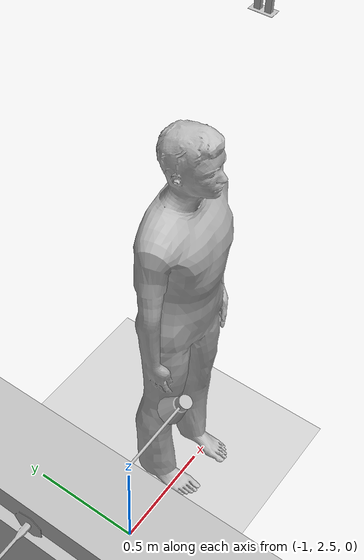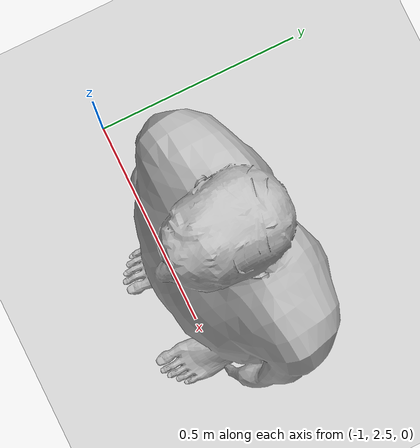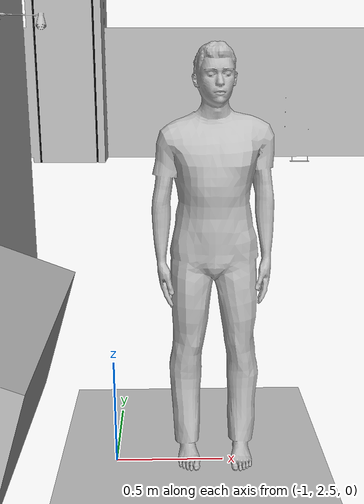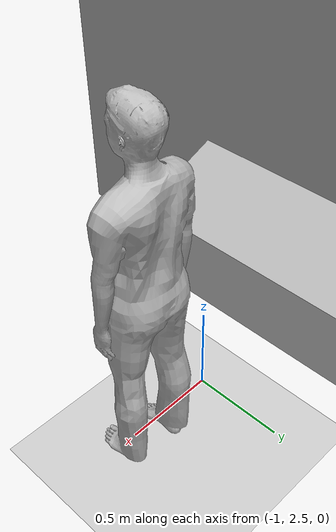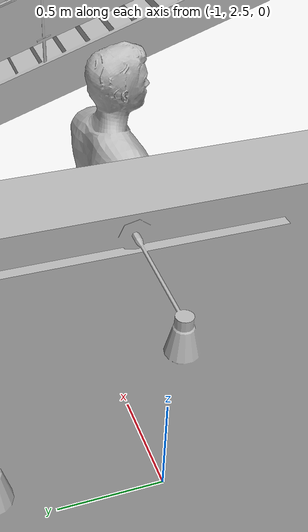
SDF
<sdf version='1.9'>
  <world name='default'>
    <light name='sun' type='directional'>
      <cast_shadows>1</cast_shadows>
      <pose>0 0 10 0 -0 0</pose>
      <diffuse>0.8 0.8 0.8 1</diffuse>
      <specular>0.2 0.2 0.2 1</specular>
      <attenuation>
        <range>1000</range>
        <constant>0.9</constant>
        <linear>0.01</linear>
        <quadratic>0.001</quadratic>
      </attenuation>
      <direction>-0.5 0.1 -0.9</direction>
    </light>
    <model name='ground_plane'>
      <pose>0 0 0 0 -0 0</pose>
      <static>1</static>
      <link name='link'>
        <collision name='collision'>
          <geometry>
            <plane>
              <normal>0 0 1</normal>
              <size>100 100</size>
            </plane>
          </geometry>
          <surface>
            <contact>
              <collide_bitmask>65535</collide_bitmask>
              <ode/>
            </contact>
            <friction>
              <ode>
                <mu>100</mu>
                <mu2>50</mu2>
              </ode>
              <torsional>
                <ode/>
              </torsional>
            </friction>
            <bounce/>
          </surface>
          <max_contacts>10</max_contacts>
        </collision>
        <visual name='visual'>
          <cast_shadows>0</cast_shadows>
          <geometry>
            <plane>
              <normal>0 0 1</normal>
              <size>100 100</size>
            </plane>
          </geometry>
          <material>
            <script>
              <uri>file://media/materials/scripts/gazebo.material</uri>
              <name>Gazebo/Grey</name>
            </script>
          </material>
        </visual>
        <self_collide>0</self_collide>
        <enable_wind>0</enable_wind>
        <kinematic>0</kinematic>
      </link>
    </model>
    <gravity>0 0 -9.8</gravity>
    <magnetic_field>6e-06 2.3e-05 -4.2e-05</magnetic_field>
    <atmosphere type='adiabatic'/>
    <physics name='default_physics' default='0' type='ode'>
      <max_step_size>0.001</max_step_size>
      <real_time_factor>1</real_time_factor>
      <real_time_update_rate>1000</real_time_update_rate>
    </physics>
    <scene>
      <ambient>0.4 0.4 0.4 1</ambient>
      <background>0.7 0.7 0.7 1</background>
      <shadows>1</shadows>
    </scene>
    <audio>
      <device>default</device>
    </audio>
    <wind/>
    <spherical_coordinates>
      <surface_model>EARTH_WGS84</surface_model>
      <latitude_deg>0</latitude_deg>
      <longitude_deg>0</longitude_deg>
      <elevation>0</elevation>
      <heading_deg>0</heading_deg>
    </spherical_coordinates>
    <model name='iscas_museum'>
      <pose>-4.54144 1.45814 0 0 -0 0</pose>
      <link name='link'>
        <inertial>
          <mass>15</mass>
        </inertial>
        <collision name='collision'>
          <pose>0 0 0 0 0 -1.57</pose>
          <geometry>
            <mesh>
              <uri>model://iscas_museum/meshes/ISCAS_museum.dae</uri>
            </mesh>
          </geometry>
          <max_contacts>10</max_contacts>
          <surface>
            <contact>
              <ode/>
            </contact>
            <bounce/>
            <friction>
              <torsional>
                <ode/>
              </torsional>
              <ode/>
            </friction>
          </surface>
        </collision>
        <visual name='visual'>
          <pose>0 0 0 0 0 -1.57</pose>
          <geometry>
            <mesh>
              <uri>model://iscas_museum/meshes/ISCAS_museum.dae</uri>
            </mesh>
          </geometry>
        </visual>
        <self_collide>0</self_collide>
        <enable_wind>0</enable_wind>
        <kinematic>0</kinematic>
      </link>
      <static>1</static>
      <pose>-4.54144 1.45814 0 0 -0 0</pose>
    </model>

    <model name='person_standing'>
      <static>true</static>
      <pose>-0.5418 2.6242 0 0 0 0</pose>

      <link name='link'>
        <visual name='visual'>
          <geometry>
            <mesh>
              <uri>model://person_standing/meshes/standing.dae</uri>
              <scale>1 1 1</scale>
            </mesh>
          </geometry>
        </visual>

        <collision name='collision'>
          <geometry>
            <box>
              <size>0.5 0.5 1.8</size>
            </box>
          </geometry>
        </collision>
      </link>
    </model>

    <gui fullscreen='0'>
      <camera name='user_camera'>
        <pose>5.56023 -4.13885 2.7523 0 0.275643 2.35619</pose>
        <view_controller>orbit</view_controller>
        <projection_type>perspective</projection_type>
      </camera>
    </gui>
  </world>

</sdf>
